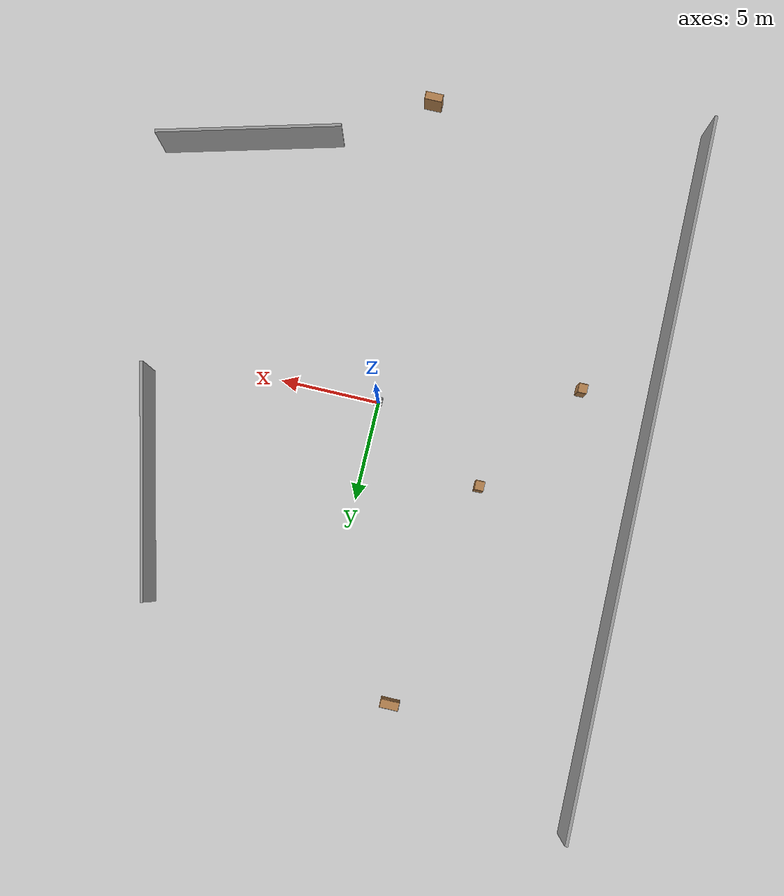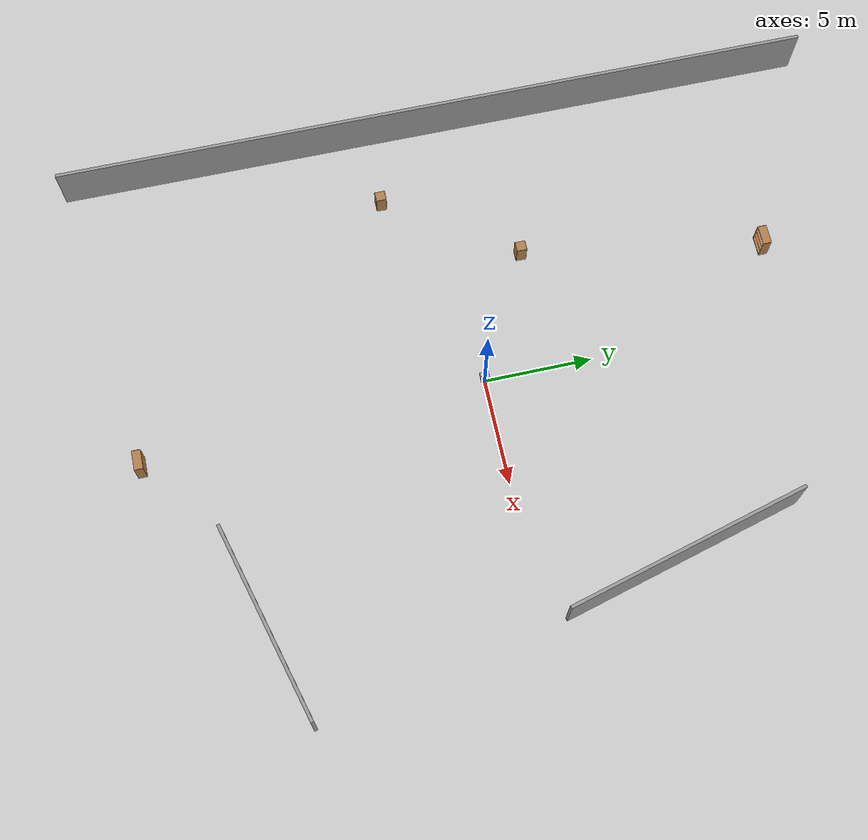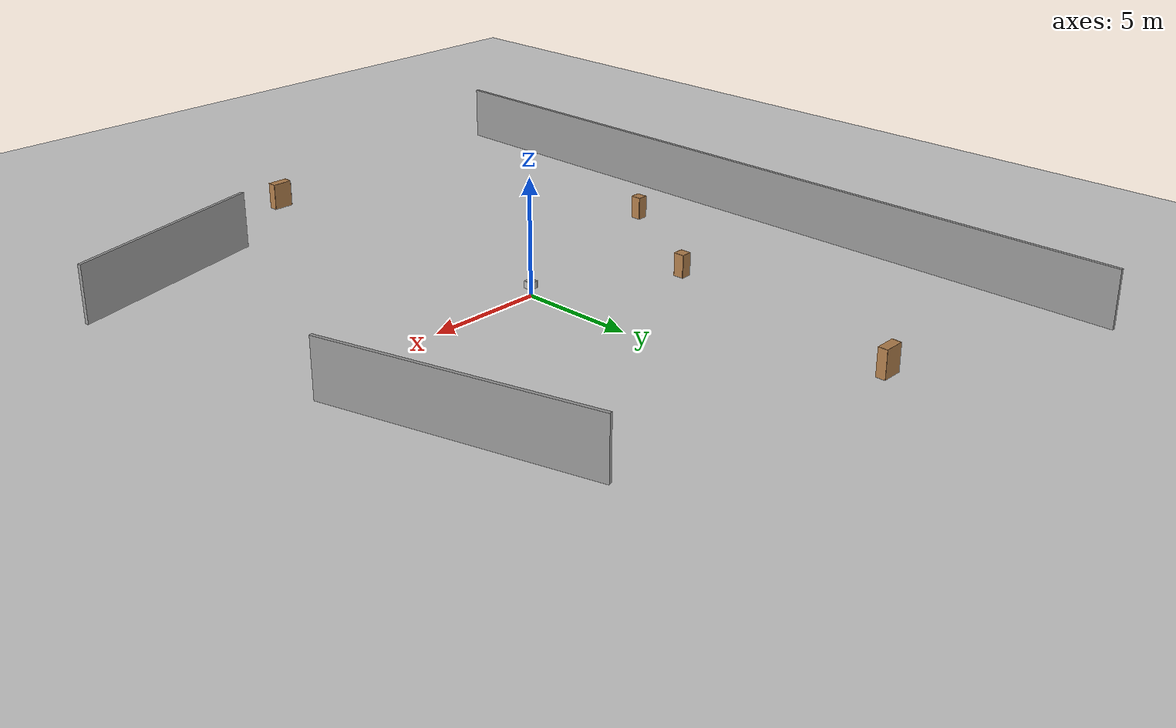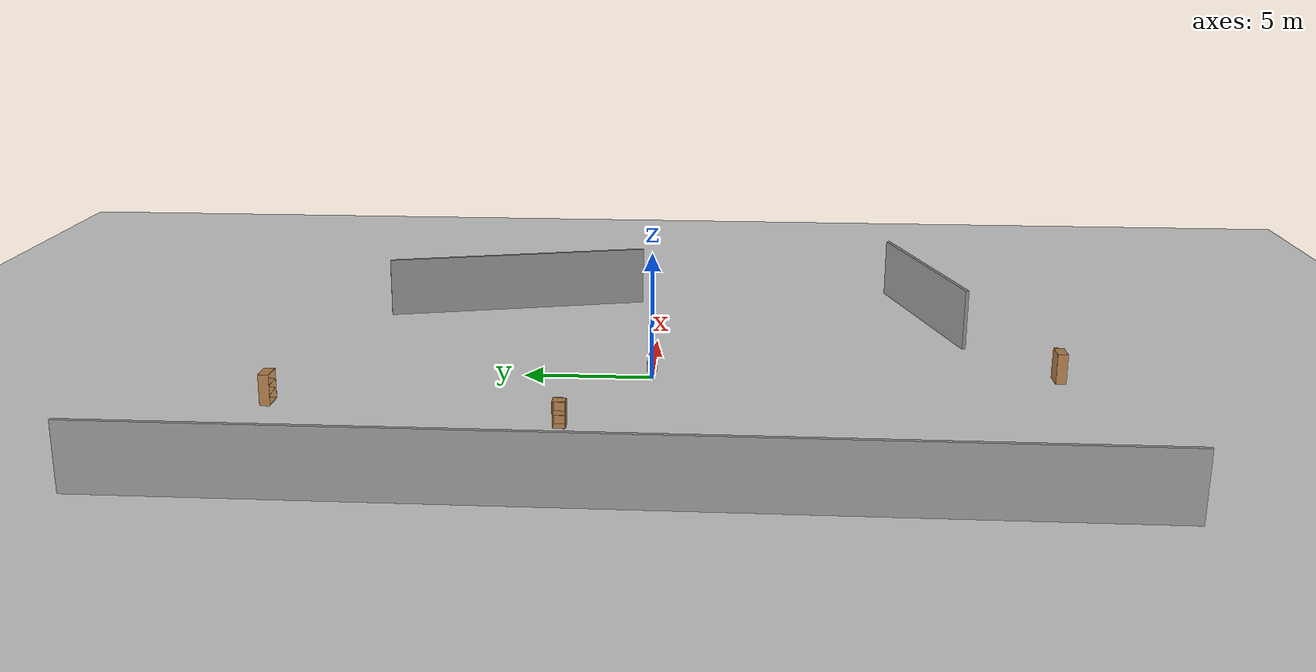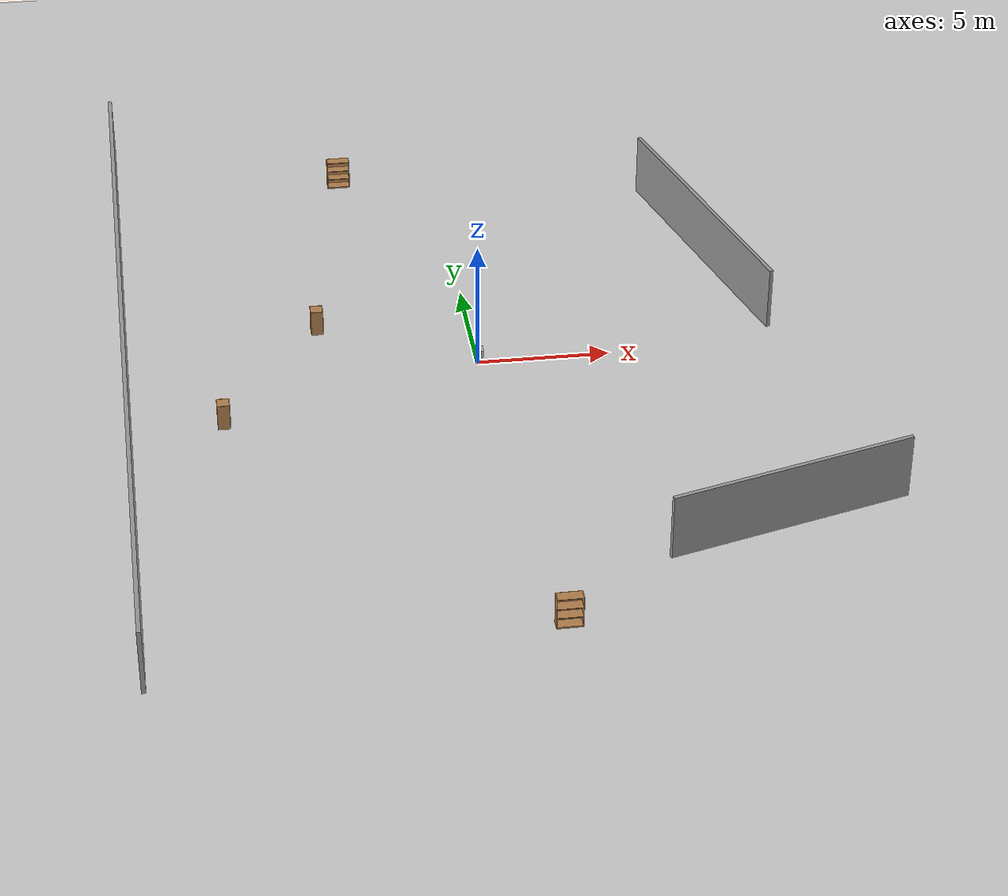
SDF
<sdf version="1.6">
 <world name="default">
  <light name="sun" type="directional">
   <pose>0 0 10 0 -0 0</pose>
   <diffuse>0.8 0.8 0.8 1</diffuse>
   <specular>0.2 0.2 0.2 1</specular>
   <attenuation>
    <range>1000</range>
    <constant>0.9</constant>
    <linear>0.01</linear>
    <quadratic>0.001</quadratic>
   </attenuation>
   <direction>-0.5 0.1 -0.9</direction>
  </light>
  <model name="animated_box">
   <pose>0 0 0.5 0 0 0</pose>
   <link name="link">
    <collision name="animated_box_collision"><geometry><box><size>0.2 0.4 0.3</size></box></geometry></collision>
    <visual name="visual"><geometry><box><size>0.2 0.4 0.3</size></box></geometry></visual>
    <inertial>
     <inertia><ixx>1</ixx><ixy>0</ixy><ixz>0</ixz><iyy>1</iyy><iyz>0</iyz><izz>1</izz></inertia>
     <mass>1</mass>
    </inertial>
    <gravity>0</gravity>
   </link>
   <plugin name="push_animate" filename="libbox_forward_movement15.so"/>
  </model>
  <model name="animated_box2">
   <pose>0 0 0.5 0 0 0</pose>
   <link name="link">
    <collision name="animated_box_collision2"><geometry><box><size>0.3 0.4 0.3</size></box></geometry></collision>
    <visual name="visual"><geometry><box><size>0.3 0.4 0.3</size></box></geometry></visual>
    <inertial>
     <inertia><ixx>1</ixx><ixy>0</ixy><ixz>0</ixz><iyy>1</iyy><iyz>0</iyz><izz>1</izz></inertia>
     <mass>1</mass>
    </inertial>
    <gravity>0</gravity>
   </link>
   <plugin name="push_animate2" filename="libbox_clockwise_movement.so"/>
  </model>
  <model name="animated_box3">
   <pose>0 0 0.5 0 0 0</pose>
   <link name="link">
    <collision name="animated_box_collision3"><geometry><box><size>0.4 0.4 0.3</size></box></geometry></collision>
    <visual name="visual"><geometry><box><size>0.4 0.4 0.3</size></box></geometry></visual>
    <inertial>
     <inertia><ixx>1</ixx><ixy>0</ixy><ixz>0</ixz><iyy>1</iyy><iyz>0</iyz><izz>1</izz></inertia>
     <mass>1</mass>
    </inertial>
    <gravity>0</gravity>
   </link>
   <plugin name="push_animate3" filename="libbox_clockwise_movement2.so"/>
  </model>
  <model name="animated_box4">
   <pose>0 0 0.5 0 0 0</pose>
   <link name="link">
    <collision name="animated_box_collision4"><geometry><box><size>0.4 0.4 0.3</size></box></geometry></collision>
    <visual name="visual"><geometry><box><size>0.4 0.4 0.3</size></box></geometry></visual>
    <inertial>
     <inertia><ixx>1</ixx><ixy>0</ixy><ixz>0</ixz><iyy>1</iyy><iyz>0</iyz><izz>1</izz></inertia>
     <mass>1</mass>
    </inertial>
    <gravity>0</gravity>
   </link>
   <plugin name="push_animate4" filename="libbox_forward_movement7.so"/>
  </model>
  <model name="ground_plane">
   <static>1</static>
   <link name="link">
    <collision name="collision">
     <geometry><plane><normal>0 0 1</normal><size>100 100</size></plane></geometry>
     <surface><friction><ode><mu>100</mu><mu2>50</mu2></ode></friction></surface>
    </collision>
    <visual name="visual">
     <cast_shadows>0</cast_shadows>
     <geometry><plane><normal>0 0 1</normal><size>100 100</size></plane></geometry>
     <material>
      <script><uri>file://media/materials/scripts/gazebo.material</uri><name>Gazebo/Grey</name></script>
     </material>
    </visual>
   </link>
  </model>
  <gravity>0 0 -9.8</gravity>
  <magnetic_field>6e-06 2.3e-05 -4.2e-05</magnetic_field>
  <atmosphere type="adiabatic"/>
  <physics name="default_physics" default="0" type="ode">
   <max_step_size>0.001</max_step_size>
   <real_time_factor>1</real_time_factor>
   <real_time_update_rate>1000</real_time_update_rate>
  </physics>
  <scene><ambient>0.4 0.4 0.4 1</ambient><background>0.7 0.7 0.7 1</background><shadows>1</shadows></scene>
  <audio><device>default</device></audio>
  <spherical_coordinates>
   <surface_model>EARTH_WGS84</surface_model>
   <latitude_deg>0</latitude_deg>
   <longitude_deg>0</longitude_deg>
   <elevation>0</elevation>
   <heading_deg>0</heading_deg>
  </spherical_coordinates>
  <model name="room11">
   <pose>0.275765 0.460575 0 0 -0 0</pose>
   <link name="Wall_0">
    <collision name="Wall_0_Collision">
     <geometry><box><size>35.75 0.15 2.5</size></box></geometry>
     <pose>0 0 1.25 0 -0 0</pose>
    </collision>
    <visual name="Wall_0_Visual">
     <pose>0 0 1.25 0 -0 0</pose>
     <geometry><box><size>35.75 0.15 2.5</size></box></geometry>
     <material>
      <script><uri>file://media/materials/scripts/gazebo.material</uri><name>Gazebo/Grey</name></script>
      <ambient>1 1 1 1</ambient>
     </material>
     <meta><layer>0</layer></meta>
    </visual>
    <pose>-13.4339 -0 0 0 -0 -1.5708</pose>
   </link>
   <link name="Wall_2">
    <collision name="Wall_2_Collision">
     <geometry><box><size>11.5 0.15 2.5</size></box></geometry>
     <pose>0 0 1.25 0 -0 0</pose>
    </collision>
    <visual name="Wall_2_Visual">
     <pose>0 0 1.25 0 -0 0</pose>
     <geometry><box><size>11.5 0.15 2.5</size></box></geometry>
     <material>
      <script><uri>file://media/materials/scripts/gazebo.material</uri><name>Gazebo/Grey</name></script>
      <ambient>1 1 1 1</ambient>
     </material>
     <meta><layer>0</layer></meta>
    </visual>
    <pose>9.656 6.08539 0 0 -0 -1.309</pose>
   </link>
   <link name="Wall_4">
    <collision name="Wall_4_Collision">
     <geometry><box><size>9.25 0.15 2.5</size></box></geometry>
     <pose>0 0 1.25 0 -0 0</pose>
    </collision>
    <visual name="Wall_4_Visual">
     <pose>0 0 1.25 0 -0 0</pose>
     <geometry><box><size>9.25 0.15 2.5</size></box></geometry>
     <material>
      <script><uri>file://media/materials/scripts/gazebo.material</uri><name>Gazebo/Grey</name></script>
      <ambient>1 1 1 1</ambient>
     </material>
     <meta><layer>0</layer></meta>
    </visual>
    <pose>9.02207 -12.0142 0 0 -0 0.261799</pose>
   </link>
   <static>1</static>
  </model>
  <model name="bookshelf">
   <static>1</static>
   <link name="link">
    <inertial><mass>1</mass></inertial>
    <collision name="back">
     <pose>0 0.005 0.6 0 -0 0</pose>
     <geometry><box><size>0.9 0.01 1.2</size></box></geometry>
    </collision>
    <visual name="visual1">
     <pose>0 0.005 0.6 0 -0 0</pose>
     <geometry><box><size>0.9 0.01 1.2</size></box></geometry>
     <material>
      <script><uri>file://media/materials/scripts/gazebo.material</uri><name>Gazebo/Wood</name></script>
     </material>
    </visual>
    <collision name="left_side">
     <pose>0.45 -0.195 0.6 0 -0 0</pose>
     <geometry><box><size>0.02 0.4 1.2</size></box></geometry>
    </collision>
    <visual name="visual2">
     <pose>0.45 -0.195 0.6 0 -0 0</pose>
     <geometry><box><size>0.02 0.4 1.2</size></box></geometry>
     <material>
      <script><uri>file://media/materials/scripts/gazebo.material</uri><name>Gazebo/Wood</name></script>
     </material>
    </visual>
    <collision name="right_side">
     <pose>-0.45 -0.195 0.6 0 -0 0</pose>
     <geometry><box><size>0.02 0.4 1.2</size></box></geometry>
    </collision>
    <visual name="visual3">
     <pose>-0.45 -0.195 0.6 0 -0 0</pose>
     <geometry><box><size>0.02 0.4 1.2</size></box></geometry>
     <material>
      <script><uri>file://media/materials/scripts/gazebo.material</uri><name>Gazebo/Wood</name></script>
     </material>
    </visual>
    <collision name="bottom">
     <pose>0 -0.195 0.03 0 -0 0</pose>
     <geometry><box><size>0.88 0.4 0.06</size></box></geometry>
    </collision>
    <visual name="visual4">
     <pose>0 -0.195 0.03 0 -0 0</pose>
     <geometry><box><size>0.88 0.4 0.06</size></box></geometry>
     <material>
      <script><uri>file://media/materials/scripts/gazebo.material</uri><name>Gazebo/Wood</name></script>
     </material>
    </visual>
    <collision name="top">
     <pose>0 -0.195 1.19 0 -0 0</pose>
     <geometry><box><size>0.88 0.4 0.02</size></box></geometry>
    </collision>
    <visual name="visual5">
     <pose>0 -0.195 1.19 0 -0 0</pose>
     <geometry><box><size>0.88 0.4 0.02</size></box></geometry>
     <material>
      <script><uri>file://media/materials/scripts/gazebo.material</uri><name>Gazebo/Wood</name></script>
     </material>
    </visual>
    <collision name="low_shelf">
     <pose>0 -0.195 0.43 0 -0 0</pose>
     <geometry><box><size>0.88 0.4 0.02</size></box></geometry>
    </collision>
    <visual name="visual6">
     <pose>0 -0.195 0.43 0 -0 0</pose>
     <geometry><box><size>0.88 0.4 0.02</size></box></geometry>
     <material>
      <script><uri>file://media/materials/scripts/gazebo.material</uri><name>Gazebo/Wood</name></script>
     </material>
    </visual>
    <collision name="high_shelf">
     <pose>0 -0.195 0.8 0 -0 0</pose>
     <geometry><box><size>0.88 0.4 0.02</size></box></geometry>
    </collision>
    <visual name="visual7">
     <pose>0 -0.195 0.8 0 -0 0</pose>
     <geometry><box><size>0.88 0.4 0.02</size></box></geometry>
     <material>
      <script><uri>file://media/materials/scripts/gazebo.material</uri><name>Gazebo/Wood</name></script>
     </material>
    </visual>
   </link>
   <pose>-3.91122 14.3821 0 0 -0 0</pose>
  </model>
  <model name="bookshelf_0">
   <static>1</static>
   <link name="link">
    <inertial><mass>1</mass></inertial>
    <collision name="back">
     <pose>0 0.005 0.6 0 -0 0</pose>
     <geometry><box><size>0.9 0.01 1.2</size></box></geometry>
    </collision>
    <visual name="visual1">
     <pose>0 0.005 0.6 0 -0 0</pose>
     <geometry><box><size>0.9 0.01 1.2</size></box></geometry>
     <material>
      <script><uri>file://media/materials/scripts/gazebo.material</uri><name>Gazebo/Wood</name></script>
     </material>
    </visual>
    <collision name="left_side">
     <pose>0.45 -0.195 0.6 0 -0 0</pose>
     <geometry><box><size>0.02 0.4 1.2</size></box></geometry>
    </collision>
    <visual name="visual2">
     <pose>0.45 -0.195 0.6 0 -0 0</pose>
     <geometry><box><size>0.02 0.4 1.2</size></box></geometry>
     <material>
      <script><uri>file://media/materials/scripts/gazebo.material</uri><name>Gazebo/Wood</name></script>
     </material>
    </visual>
    <collision name="right_side">
     <pose>-0.45 -0.195 0.6 0 -0 0</pose>
     <geometry><box><size>0.02 0.4 1.2</size></box></geometry>
    </collision>
    <visual name="visual3">
     <pose>-0.45 -0.195 0.6 0 -0 0</pose>
     <geometry><box><size>0.02 0.4 1.2</size></box></geometry>
     <material>
      <script><uri>file://media/materials/scripts/gazebo.material</uri><name>Gazebo/Wood</name></script>
     </material>
    </visual>
    <collision name="bottom">
     <pose>0 -0.195 0.03 0 -0 0</pose>
     <geometry><box><size>0.88 0.4 0.06</size></box></geometry>
    </collision>
    <visual name="visual4">
     <pose>0 -0.195 0.03 0 -0 0</pose>
     <geometry><box><size>0.88 0.4 0.06</size></box></geometry>
     <material>
      <script><uri>file://media/materials/scripts/gazebo.material</uri><name>Gazebo/Wood</name></script>
     </material>
    </visual>
    <collision name="top">
     <pose>0 -0.195 1.19 0 -0 0</pose>
     <geometry><box><size>0.88 0.4 0.02</size></box></geometry>
    </collision>
    <visual name="visual5">
     <pose>0 -0.195 1.19 0 -0 0</pose>
     <geometry><box><size>0.88 0.4 0.02</size></box></geometry>
     <material>
      <script><uri>file://media/materials/scripts/gazebo.material</uri><name>Gazebo/Wood</name></script>
     </material>
    </visual>
    <collision name="low_shelf">
     <pose>0 -0.195 0.43 0 -0 0</pose>
     <geometry><box><size>0.88 0.4 0.02</size></box></geometry>
    </collision>
    <visual name="visual6">
     <pose>0 -0.195 0.43 0 -0 0</pose>
     <geometry><box><size>0.88 0.4 0.02</size></box></geometry>
     <material>
      <script><uri>file://media/materials/scripts/gazebo.material</uri><name>Gazebo/Wood</name></script>
     </material>
    </visual>
    <collision name="high_shelf">
     <pose>0 -0.195 0.8 0 -0 0</pose>
     <geometry><box><size>0.88 0.4 0.02</size></box></geometry>
    </collision>
    <visual name="visual7">
     <pose>0 -0.195 0.8 0 -0 0</pose>
     <geometry><box><size>0.88 0.4 0.02</size></box></geometry>
     <material>
      <script><uri>file://media/materials/scripts/gazebo.material</uri><name>Gazebo/Wood</name></script>
     </material>
    </visual>
   </link>
   <pose>0.806947 -15.648 0 0 -0 0</pose>
  </model>
  <model name="cabinet">
   <static>1</static>
   <link name="cabinet_bottom_plate">
    <inertial>
     <pose>0 0 -1 0 -0 0</pose>
     <inertia><ixx>2.05</ixx><ixy>0</ixy><ixz>0</ixz><iyy>2.05</iyy><iyz>0</iyz><izz>2.05</izz></inertia>
     <mass>25</mass>
    </inertial>
    <collision name="cabinet_bottom_plate_geom">
     <pose>0 0 0.01 0 -0 0</pose>
     <geometry><box><size>0.45 0.45 0.02</size></box></geometry>
    </collision>
    <visual name="cabinet_bottom_plate_geom_visual">
     <pose>0 0 0.01 0 -0 0</pose>
     <geometry><box><size>0.45 0.45 0.02</size></box></geometry>
     <material>
      <script><uri>file://media/materials/scripts/gazebo.material</uri><name>Gazebo/Wood</name></script>
     </material>
    </visual>
    <collision name="cabinet_bottom_plate_geom_cabinet_back_plate">
     <pose>0.235 0 0.51 0 -0 0</pose>
     <geometry><box><size>0.02 0.45 1.02</size></box></geometry>
    </collision>
    <visual name="cabinet_bottom_plate_geom_cabinet_back_plate_visual">
     <pose>0.235 0 0.51 0 -0 0</pose>
     <geometry><box><size>0.02 0.45 1.02</size></box></geometry>
     <material>
      <script><uri>file://media/materials/scripts/gazebo.material</uri><name>Gazebo/Wood</name></script>
     </material>
    </visual>
    <collision name="cabinet_bottom_plate_geom_cabinet_left_plate">
     <pose>0 0.235 0.51 0 -0 0</pose>
     <geometry><box><size>0.45 0.02 1.02</size></box></geometry>
    </collision>
    <visual name="cabinet_bottom_plate_geom_cabinet_left_plate_visual">
     <pose>0 0.235 0.51 0 -0 0</pose>
     <geometry><box><size>0.45 0.02 1.02</size></box></geometry>
     <material>
      <script><uri>file://media/materials/scripts/gazebo.material</uri><name>Gazebo/Wood</name></script>
     </material>
    </visual>
    <collision name="cabinet_bottom_plate_geom_cabinet_middle_plate">
     <pose>0 0 0.51 0 -0 0</pose>
     <geometry><box><size>0.45 0.45 0.02</size></box></geometry>
    </collision>
    <visual name="cabinet_bottom_plate_geom_cabinet_middle_plate_visual">
     <pose>0 0 0.51 0 -0 0</pose>
     <geometry><box><size>0.45 0.45 0.02</size></box></geometry>
     <material>
      <script><uri>file://media/materials/scripts/gazebo.material</uri><name>Gazebo/Wood</name></script>
     </material>
    </visual>
    <collision name="cabinet_bottom_plate_geom_cabinet_right_plate">
     <pose>0 -0.235 0.51 0 -0 0</pose>
     <geometry><box><size>0.45 0.02 1.02</size></box></geometry>
    </collision>
    <visual name="cabinet_bottom_plate_geom_cabinet_right_plate_visual">
     <pose>0 -0.235 0.51 0 -0 0</pose>
     <geometry><box><size>0.45 0.02 1.02</size></box></geometry>
     <material>
      <script><uri>file://media/materials/scripts/gazebo.material</uri><name>Gazebo/Wood</name></script>
     </material>
    </visual>
    <collision name="cabinet_bottom_plate_geom_cabinet_top_plate">
     <pose>0 0 1.01 0 -0 0</pose>
     <geometry><box><size>0.45 0.45 0.02</size></box></geometry>
    </collision>
    <visual name="cabinet_bottom_plate_geom_cabinet_top_plate_visual">
     <pose>0 0 1.01 0 -0 0</pose>
     <geometry><box><size>0.45 0.45 0.02</size></box></geometry>
     <material>
      <script><uri>file://media/materials/scripts/gazebo.material</uri><name>Gazebo/Wood</name></script>
     </material>
    </visual>
   </link>
   <pose>-5.81463 3.02607 0 0 -0 0</pose>
  </model>
  <model name="cabinet_0">
   <static>1</static>
   <link name="cabinet_bottom_plate">
    <inertial>
     <pose>0 0 -1 0 -0 0</pose>
     <inertia><ixx>2.05</ixx><ixy>0</ixy><ixz>0</ixz><iyy>2.05</iyy><iyz>0</iyz><izz>2.05</izz></inertia>
     <mass>25</mass>
    </inertial>
    <collision name="cabinet_bottom_plate_geom">
     <pose>0 0 0.01 0 -0 0</pose>
     <geometry><box><size>0.45 0.45 0.02</size></box></geometry>
    </collision>
    <visual name="cabinet_bottom_plate_geom_visual">
     <pose>0 0 0.01 0 -0 0</pose>
     <geometry><box><size>0.45 0.45 0.02</size></box></geometry>
     <material>
      <script><uri>file://media/materials/scripts/gazebo.material</uri><name>Gazebo/Wood</name></script>
     </material>
    </visual>
    <collision name="cabinet_bottom_plate_geom_cabinet_back_plate">
     <pose>0.235 0 0.51 0 -0 0</pose>
     <geometry><box><size>0.02 0.45 1.02</size></box></geometry>
    </collision>
    <visual name="cabinet_bottom_plate_geom_cabinet_back_plate_visual">
     <pose>0.235 0 0.51 0 -0 0</pose>
     <geometry><box><size>0.02 0.45 1.02</size></box></geometry>
     <material>
      <script><uri>file://media/materials/scripts/gazebo.material</uri><name>Gazebo/Wood</name></script>
     </material>
    </visual>
    <collision name="cabinet_bottom_plate_geom_cabinet_left_plate">
     <pose>0 0.235 0.51 0 -0 0</pose>
     <geometry><box><size>0.45 0.02 1.02</size></box></geometry>
    </collision>
    <visual name="cabinet_bottom_plate_geom_cabinet_left_plate_visual">
     <pose>0 0.235 0.51 0 -0 0</pose>
     <geometry><box><size>0.45 0.02 1.02</size></box></geometry>
     <material>
      <script><uri>file://media/materials/scripts/gazebo.material</uri><name>Gazebo/Wood</name></script>
     </material>
    </visual>
    <collision name="cabinet_bottom_plate_geom_cabinet_middle_plate">
     <pose>0 0 0.51 0 -0 0</pose>
     <geometry><box><size>0.45 0.45 0.02</size></box></geometry>
    </collision>
    <visual name="cabinet_bottom_plate_geom_cabinet_middle_plate_visual">
     <pose>0 0 0.51 0 -0 0</pose>
     <geometry><box><size>0.45 0.45 0.02</size></box></geometry>
     <material>
      <script><uri>file://media/materials/scripts/gazebo.material</uri><name>Gazebo/Wood</name></script>
     </material>
    </visual>
    <collision name="cabinet_bottom_plate_geom_cabinet_right_plate">
     <pose>0 -0.235 0.51 0 -0 0</pose>
     <geometry><box><size>0.45 0.02 1.02</size></box></geometry>
    </collision>
    <visual name="cabinet_bottom_plate_geom_cabinet_right_plate_visual">
     <pose>0 -0.235 0.51 0 -0 0</pose>
     <geometry><box><size>0.45 0.02 1.02</size></box></geometry>
     <material>
      <script><uri>file://media/materials/scripts/gazebo.material</uri><name>Gazebo/Wood</name></script>
     </material>
    </visual>
    <collision name="cabinet_bottom_plate_geom_cabinet_top_plate">
     <pose>0 0 1.01 0 -0 0</pose>
     <geometry><box><size>0.45 0.45 0.02</size></box></geometry>
    </collision>
    <visual name="cabinet_bottom_plate_geom_cabinet_top_plate_visual">
     <pose>0 0 1.01 0 -0 0</pose>
     <geometry><box><size>0.45 0.45 0.02</size></box></geometry>
     <material>
      <script><uri>file://media/materials/scripts/gazebo.material</uri><name>Gazebo/Wood</name></script>
     </material>
    </visual>
   </link>
   <pose>-9.72931 -2.83016 0 0 -0 0</pose>
  </model>
 </world>
</sdf>
